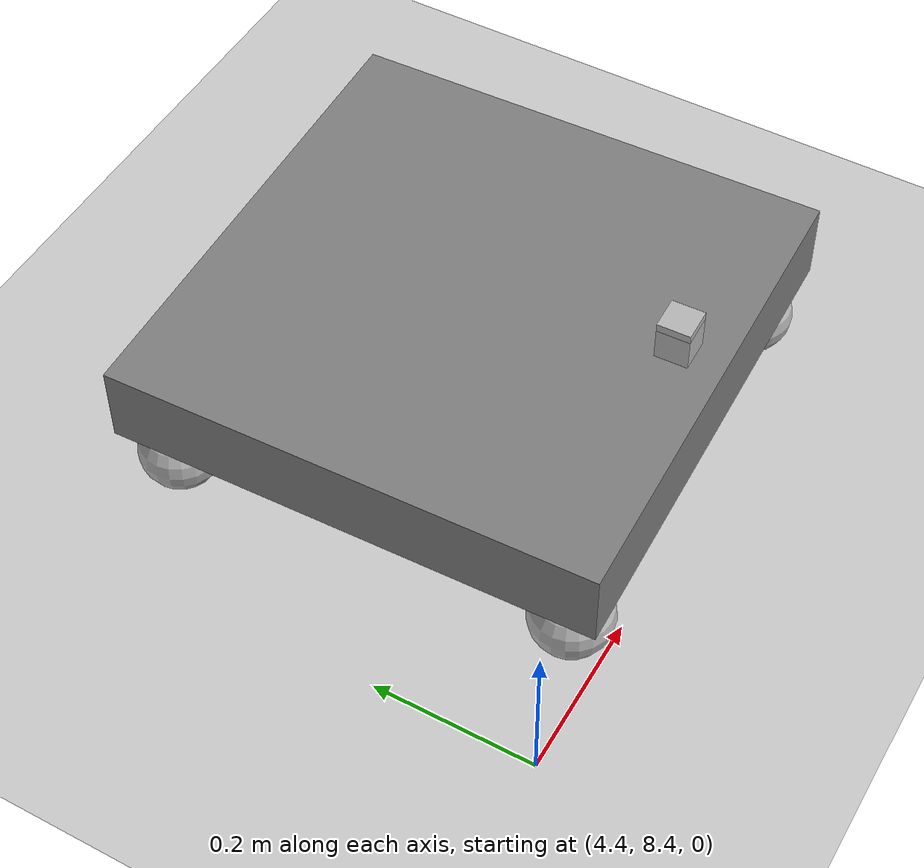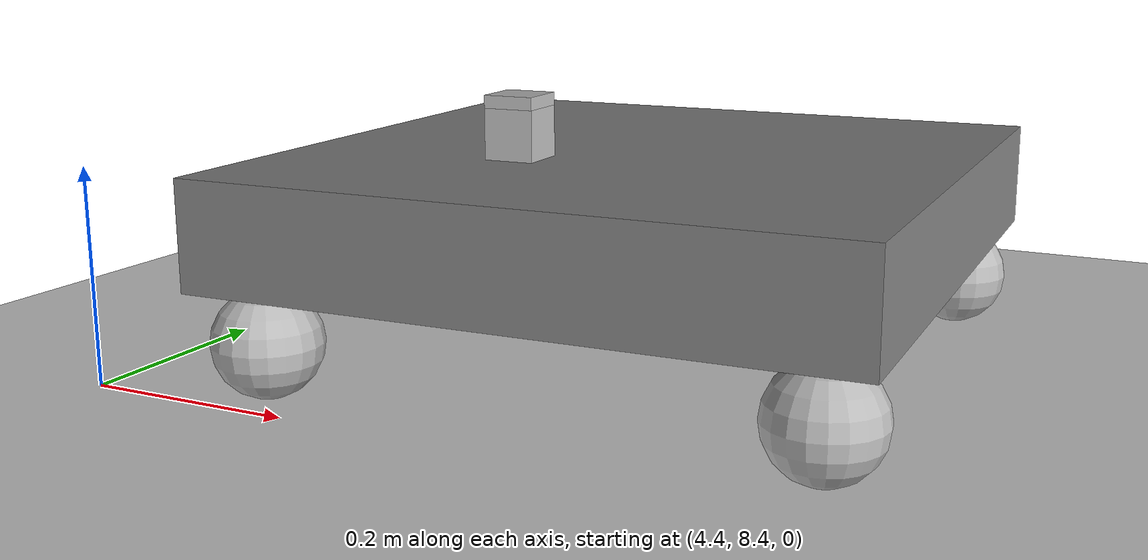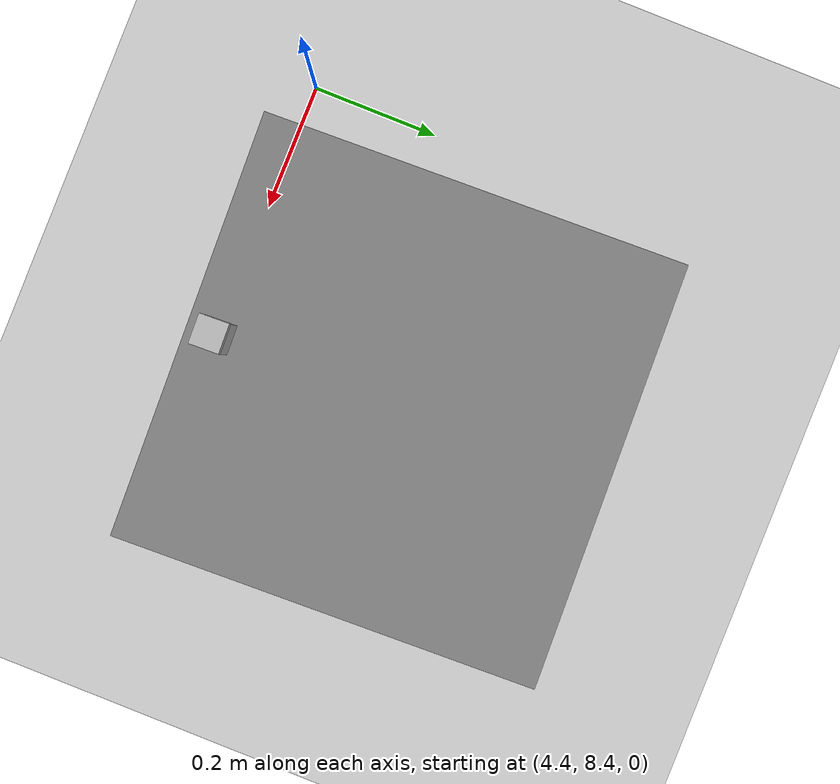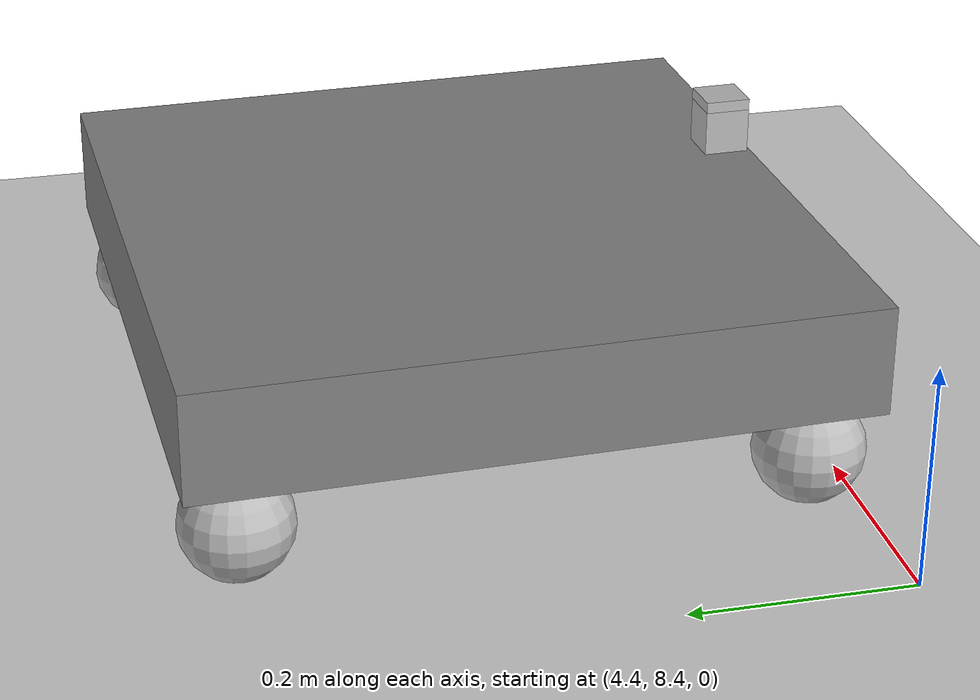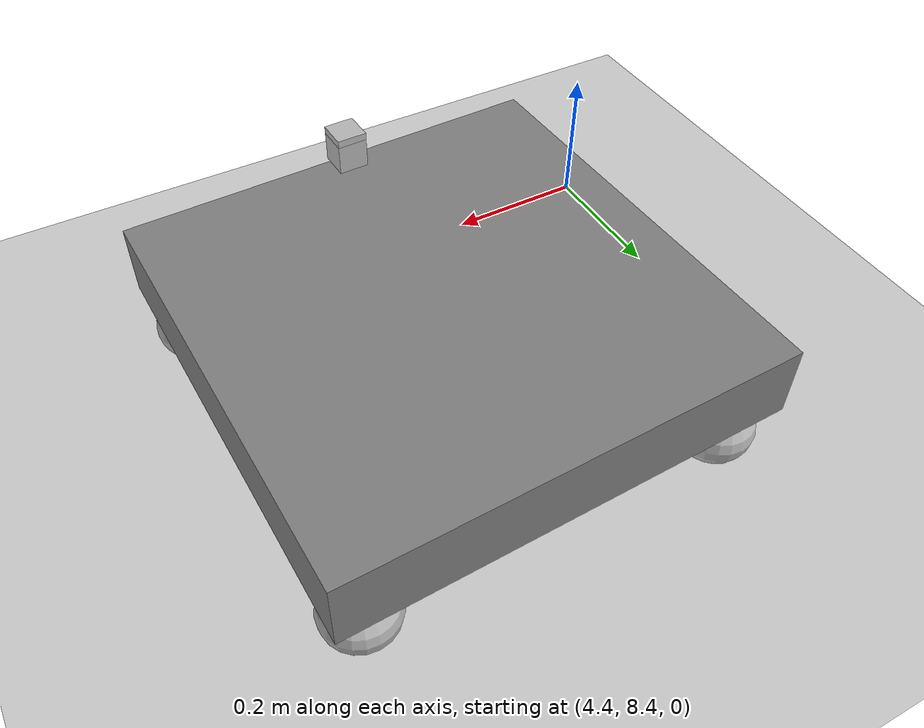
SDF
<?xml version='1.0'?>
<sdf version='1.5'>
 <world name="default">
   <include>
      <uri>model://sun</uri>
   </include>
   <include>
      <uri>model://ground_plane</uri>
   </include>

   <!-- Inital TUe-pose -->
   <include>
      <uri>model://ropod_tue_2</uri>
      <pose>4.8 8.7 0.0 0.0 0.0 -1.54</pose>
    </include>

   <!-- Initial BRSU-pose -->
 </world>
</sdf>

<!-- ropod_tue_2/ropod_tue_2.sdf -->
<sdf version='1.5'>

  <model name='ropod_model'>

   <link name='base_link'>

      <inertial>
        <mass>0.01</mass>
        <inertia> <!-- inertias are tricky to compute -->
          <!-- http://gazebosim.org/tutorials?tut=inertia&cat=build_robot -->
          <ixx>0.083*00.0*1.01</ixx>       <!-- for a box: ixx = 0.083 * mass * (y*y + z*z) -->
          <ixy>0.0</ixy>         <!-- for a box: ixy = 0 -->
          <ixz>0.0</ixz>         <!-- for a box: ixz = 0 -->
          <iyy>0.083*00.01*1.01</iyy>       <!-- for a box: iyy = 0.083 * mass * (x*x + z*z) -->
          <iyz>0.0</iyz>         <!-- for a box: iyz = 0 -->
          <izz>0.083*00.01*2</izz>       <!-- for a box: izz = 0.083 * mass * (x*x + y*y) -->
        </inertia>
      </inertial>

      <collision name='base_link_collision'>
        <pose>0 0 0.15 0 0 0</pose>
        <geometry>
          <box>
            <size>0.6 0.6 0.1</size>
          </box>
        </geometry>
      </collision>
      <visual name='base_link_visual'>
        <pose>0 0 0.15 0 0 0</pose>
        <geometry>
          <box>
            <size>0.6 0.6 0.1</size>
          </box>
        </geometry>
	<material>
		<ambient>0.5 0.5 0.5 1</ambient>
		<diffuse>0.5 0.5 0.5 1</diffuse>
		<specular>0.1 0.1 0.1 1</specular>
		<emissive>0 0 0 0</emissive>
	</material>
      </visual>

      <collision name='base_link_collision_left_rear_wheel'>
        <pose>-0.25 0.25 0.05 0 -0 0</pose>
        <geometry>
          <sphere>
            <radius>0.05</radius>
          </sphere>
        </geometry>
        <surface>
          <contact>
            <ode>
              <kp>1e+09</kp>
              <kd>1</kd>
            </ode>
          </contact>
          <friction>
            <ode>
              <mu>5</mu>
              <mu2>5</mu2>
            </ode>
          </friction>
        </surface>
      </collision>
      <visual name='base_link_visual_left_rear_wheel'>
         <pose>-0.25 0.25 0.05 0 -0 0</pose>
        <geometry>
          <sphere>
            <radius>0.05</radius>
          </sphere>
        </geometry>
      </visual>

      <collision name='base_link_collision_left_top_wheel'>
        <pose>0.25 0.25 0.05 0 -0 0</pose>
        <geometry>
          <sphere>
            <radius>0.05</radius>
          </sphere>
        </geometry>
        <surface>
          <contact>
            <ode>
              <kp>1e+09</kp>
              <kd>1</kd>
            </ode>
          </contact>
          <friction>
            <ode>
              <mu>5</mu>
              <mu2>5</mu2>
            </ode>
          </friction>
        </surface>
      </collision>
      <visual name='base_link_visual_left_top_wheel'>
         <pose>0.25 0.25 0.05 0 -0 0</pose>
        <geometry>
          <sphere>
            <radius>0.05</radius>
          </sphere>
        </geometry>
      </visual>

      <collision name='base_link_collision_right_top_wheel'>
        <pose>0.25 -0.25 0.05 0 -0 0</pose>
        <geometry>
          <sphere>
            <radius>0.05</radius>
          </sphere>
        </geometry>
        <surface>
          <contact>
            <ode>
              <kp>1e+09</kp>
              <kd>1</kd>
            </ode>
          </contact>
          <friction>
            <ode>
              <mu>5</mu>
              <mu2>5</mu2>
            </ode>
          </friction>
        </surface>
      </collision>
      <visual name='base_link_visual_right_top_wheel'>
         <pose>0.25 -0.25 0.05 0 -0 0</pose>
        <geometry>
          <sphere>
            <radius>0.05</radius>
          </sphere>
        </geometry>
      </visual>

      <collision name='base_link_collision_right_rear_wheel'>
        <pose>-0.25 -0.25 0.05 0 -0 0</pose>
        <geometry>
          <sphere>
            <radius>0.05</radius>
          </sphere>
        </geometry>
        <surface>
          <contact>
            <ode>
              <kp>1e+09</kp>
              <kd>1</kd>
            </ode>
          </contact>
          <friction>
            <ode>
              <mu>5</mu>
              <mu2>5</mu2>
            </ode>
          </friction>
        </surface>
      </collision>
      <visual name='base_link_visual_right_rear_wheel'>
         <pose>-0.25 -0.25 0.05 0 -0 0</pose>
        <geometry>
          <sphere>
            <radius>0.05</radius>
          </sphere>
        </geometry>
      </visual>

<!-- ********************** laser ***************************** -->

      <visual name='base_link_visual_laser'>
        <pose>0.25 0 0.25 0 -0 0</pose>
        <geometry>
          <box>
            <size>0.04 0.04 0.04</size>
          </box>
        </geometry>
      </visual>
      <visual name='base_link_visual_lasertop'>
        <pose>0.25 0 0.275 0 -0 0</pose>
        <geometry>
          <box>
            <size>0.04 0.04 0.01</size>
          </box>
        </geometry>
      </visual>

      <sensor name='laser' type='ray'>
	 <pose>0.25 0 0.25 0 0 0</pose>
        <ray>
          <scan>
            <horizontal>
              <samples>500</samples>
              <resolution>1</resolution>
              <min_angle>-2.35</min_angle>
              <max_angle>2.35</max_angle>
            </horizontal>
            <vertical>
              <samples>1</samples>
              <resolution>1</resolution>
              <min_angle>0</min_angle>
              <max_angle>0</max_angle>
            </vertical>
          </scan>
          <range>
            <min>0.01</min>
            <max>4</max>
            <resolution>0.01</resolution>
          </range>
        </ray>

      <plugin name="gazebo_ros_laser" filename="libgazebo_ros_laser.so">
        <topicName>laser_sim</topicName>
         <frameName>/ropod_tue_2/laser/scan</frameName>
        <robotNamespace></robotNamespace>
        <gaussianNoise>0.01</gaussianNoise>
        <always_on>1</always_on>
        <updateRate>30.0</updateRate>
      </plugin>
      <visualize>1</visualize>

    </sensor>

    <!-- ********************** bumper ***************************** -->
    <sensor type="contact" name="gazebo_base_bumper">
        <update_rate>100.0</update_rate>
        <always_on>1</always_on>
        <contact>
            <collision>base_link_collision</collision>
            <topic>bumper_contact</topic>
        </contact>
        <plugin name="gazebo_ros_bumper_controller" filename="libgazebo_ros_bumper.so">
            <alwaysOn>true</alwaysOn>
            <updateRate>100.0</updateRate>
            <bumperTopicName>bumper</bumperTopicName>
            <frameName>world</frameName>
        </plugin>
    </sensor>

<!-- ********************** Other parameters ***************************** -->
      <gravity>1</gravity>
      <velocity_decay>
        <linear>0</linear>
        <angular>0</angular>
      </velocity_decay>
      <self_collide>0</self_collide>

   </link>

   <plugin name="Odometry_Plugin" filename="libOdometry_Plugin.so">
       <updateRate>30.0</updateRate>
       <veltopicName>/ropod_tue_2/cmd_vel</veltopicName>        <!-- TEMP DEFINED AS ropod_tue_2 -> define with xacro-->
       <odomtopicName>/ropod_tue_2/odom_incomplete</odomtopicName>       <!-- TEMP DEFINED AS ropod_tue_2 -> define with xacro-->
       <robotBaseFrame>/ropod_tue_2/base_link</robotBaseFrame>
       <odomFrame>/ropod_tue_2/odom</odomFrame>
   </plugin>

  </model>

  </sdf>
